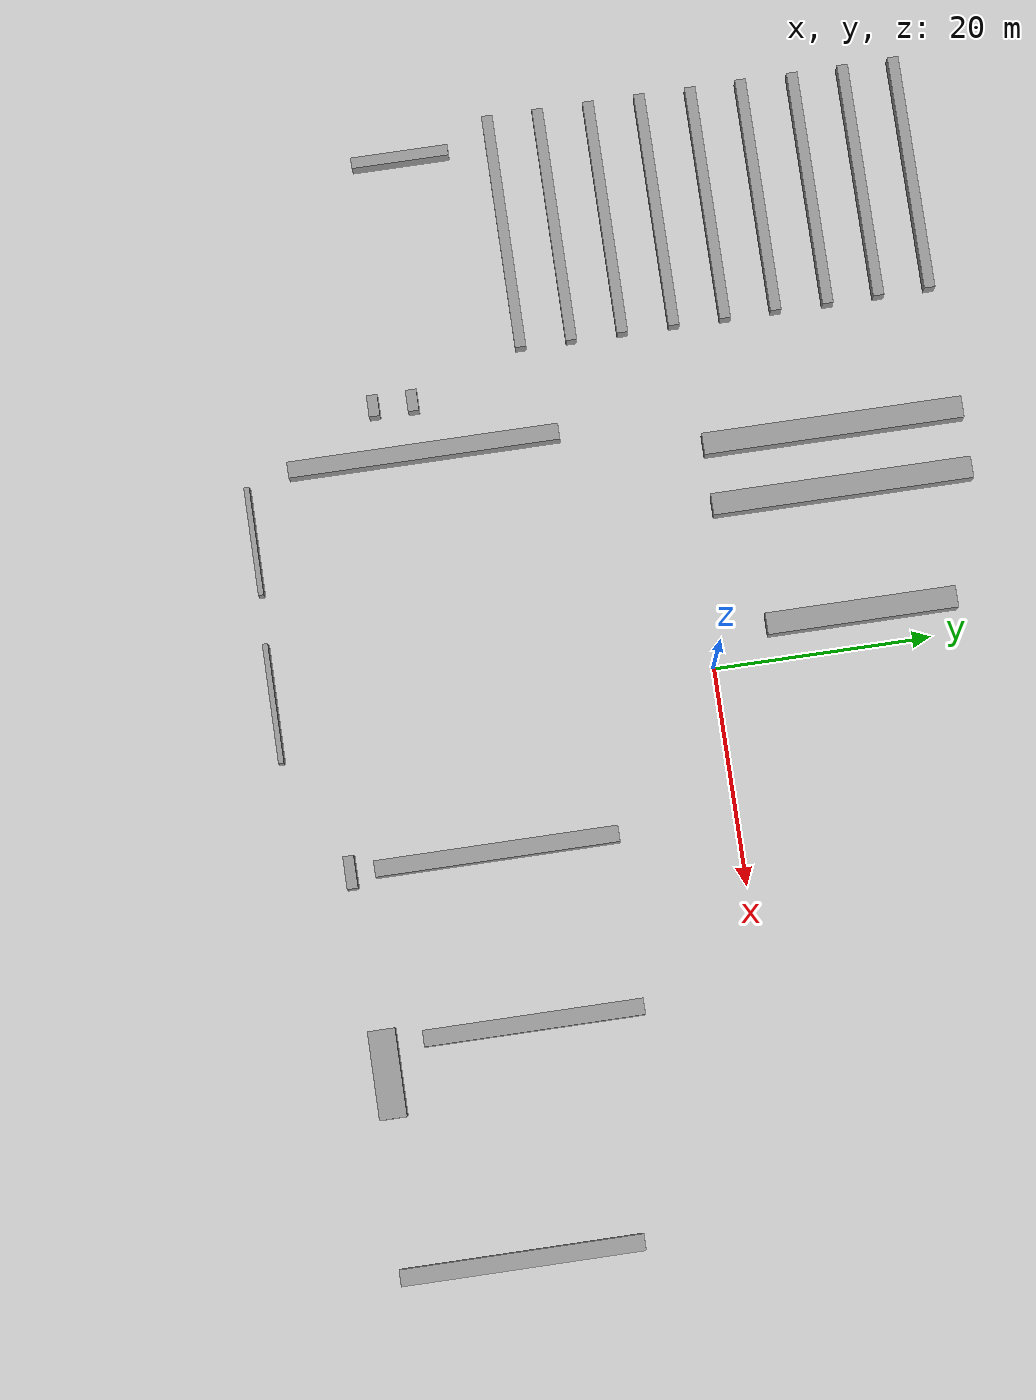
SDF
<sdf version="1.6">
 <world name="default">
  <model name="ground_plane">
   <static>1</static>
   <link name="link">
    <collision name="collision">
     <geometry><plane><normal>0 0 1</normal><size>120 120</size></plane></geometry>
     <surface>
      <contact><collide_bitmask>65535</collide_bitmask></contact>
      <friction><ode><mu>100</mu><mu2>50</mu2></ode></friction>
     </surface>
    </collision>
    <visual name="visual">
     <cast_shadows>0</cast_shadows>
     <geometry><plane><normal>0 0 1</normal><size>120 120</size></plane></geometry>
     <material>
      <script><uri>file://media/materials/scripts/gazebo.material</uri><name>Gazebo/Grey</name></script>
     </material>
    </visual>
   </link>
  </model>
  <model name="box3">
   <link name="link">
    <inertial>
     <mass>50</mass>
     <inertia><ixx>8.33333</ixx><ixy>0</ixy><ixz>0</ixz><iyy>8.33333</iyy><iyz>0</iyz><izz>8.33333</izz></inertia>
    </inertial>
    <pose>1.77498 -5.65946 0.5 0 -0 0</pose>
    <gravity>0</gravity>
    <visual name="visual">
     <geometry><box><size>10 0.5 2</size></box></geometry>
     <material>
      <script><name>Gazebo/Grey</name><uri>file://media/materials/scripts/gazebo.material</uri></script>
      <shader type="pixel"><normal_map>__default__</normal_map></shader>
      <ambient>0.3 0.3 0.3 1</ambient>
      <diffuse>0.7 0.7 0.7 1</diffuse>
      <specular>0.01 0.01 0.01 1</specular>
      <emissive>0 0 0 1</emissive>
     </material>
    </visual>
    <collision name="collision">
     <geometry><box><size>10 0.5 2</size></box></geometry>
     <surface>
      <friction>
       <ode><mu>1</mu><mu2>1</mu2><fdir1>0 0 0</fdir1><slip1>0</slip1><slip2>0</slip2></ode>
       <torsional>
        <coefficient>1</coefficient>
        <patch_radius>0</patch_radius>
        <surface_radius>0</surface_radius>
        <use_patch_radius>1</use_patch_radius>
        <ode><slip>0</slip></ode>
       </torsional>
      </friction>
      <bounce><restitution_coefficient>0</restitution_coefficient><threshold>1e+06</threshold></bounce>
      <contact>
       <collide_without_contact>0</collide_without_contact>
       <collide_without_contact_bitmask>1</collide_without_contact_bitmask>
       <collide_bitmask>1</collide_bitmask>
       <ode>
        <soft_cfm>0</soft_cfm>
        <soft_erp>0.2</soft_erp>
        <kp>1e+13</kp>
        <kd>1</kd>
        <max_vel>0.01</max_vel>
        <min_depth>0</min_depth>
       </ode>
       <bullet>
        <split_impulse>1</split_impulse>
        <split_impulse_penetration_threshold>-0.01</split_impulse_penetration_threshold>
        <soft_cfm>0</soft_cfm>
        <soft_erp>0.2</soft_erp>
        <kp>1e+13</kp>
        <kd>1</kd>
       </bullet>
      </contact>
     </surface>
    </collision>
   </link>
   <static>0</static>
   <pose>-19.1805 -34.1738 0.5 0 -0 0</pose>
  </model>
  <model name="box1">
   <link name="link">
    <inertial>
     <mass>50</mass>
     <inertia><ixx>354.167</ixx><ixy>0</ixy><ixz>0</ixz><iyy>20.8333</iyy><iyz>0</iyz><izz>341.667</izz></inertia>
    </inertial>
    <pose>-6.07242 -0.338776 0.500003 0 -0 0</pose>
    <visual name="visual">
     <geometry><box><size>1 9 2</size></box></geometry>
     <material>
      <script><name>Gazebo/Grey</name><uri>file://media/materials/scripts/gazebo.material</uri></script>
      <shader type="pixel"><normal_map>__default__</normal_map></shader>
      <ambient>0.3 0.3 0.3 1</ambient>
      <diffuse>0.7 0.7 0.7 1</diffuse>
      <specular>0.01 0.01 0.01 1</specular>
      <emissive>0 0 0 1</emissive>
     </material>
    </visual>
    <collision name="collision">
     <geometry><box><size>1 9 2</size></box></geometry>
     <surface>
      <friction>
       <ode><mu>1</mu><mu2>1</mu2><fdir1>0 0 0</fdir1><slip1>0</slip1><slip2>0</slip2></ode>
       <torsional>
        <coefficient>1</coefficient>
        <patch_radius>0</patch_radius>
        <surface_radius>0</surface_radius>
        <use_patch_radius>1</use_patch_radius>
        <ode><slip>0</slip></ode>
       </torsional>
      </friction>
      <bounce><restitution_coefficient>0</restitution_coefficient><threshold>1e+06</threshold></bounce>
      <contact>
       <collide_without_contact>0</collide_without_contact>
       <collide_without_contact_bitmask>1</collide_without_contact_bitmask>
       <collide_bitmask>1</collide_bitmask>
       <ode>
        <soft_cfm>0</soft_cfm>
        <soft_erp>0.2</soft_erp>
        <kp>1e+13</kp>
        <kd>1</kd>
        <max_vel>0.01</max_vel>
        <min_depth>0</min_depth>
       </ode>
       <bullet>
        <split_impulse>1</split_impulse>
        <split_impulse_penetration_threshold>-0.01</split_impulse_penetration_threshold>
        <soft_cfm>0</soft_cfm>
        <soft_erp>0.2</soft_erp>
        <kp>1e+13</kp>
        <kd>1</kd>
       </bullet>
      </contact>
     </surface>
    </collision>
   </link>
   <static>0</static>
   <pose>-44.9927 -21.3942 0.50001 0 -2e-06 0</pose>
  </model>
  <model name="box2">
   <link name="link">
    <inertial>
     <mass>50</mass>
     <inertia><ixx>8.33333</ixx><ixy>0</ixy><ixz>0</ixz><iyy>8.33333</iyy><iyz>0</iyz><izz>8.33333</izz></inertia>
    </inertial>
    <pose>5.5216 -2.84495 0.5 0 -0 0</pose>
    <gravity>0</gravity>
    <visual name="visual">
     <geometry><box><size>2 1 2</size></box></geometry>
     <material>
      <script><name>Gazebo/Grey</name><uri>file://media/materials/scripts/gazebo.material</uri></script>
      <shader type="pixel"><normal_map>__default__</normal_map></shader>
      <ambient>0.3 0.3 0.3 1</ambient>
      <diffuse>0.7 0.7 0.7 1</diffuse>
      <specular>0.01 0.01 0.01 1</specular>
      <emissive>0 0 0 1</emissive>
     </material>
    </visual>
    <collision name="collision">
     <geometry><box><size>2 1 2</size></box></geometry>
     <surface>
      <friction>
       <ode><mu>1</mu><mu2>1</mu2><fdir1>0 0 0</fdir1><slip1>0</slip1><slip2>0</slip2></ode>
       <torsional>
        <coefficient>1</coefficient>
        <patch_radius>0</patch_radius>
        <surface_radius>0</surface_radius>
        <use_patch_radius>1</use_patch_radius>
        <ode><slip>0</slip></ode>
       </torsional>
      </friction>
      <bounce><restitution_coefficient>0</restitution_coefficient><threshold>1e+06</threshold></bounce>
      <contact>
       <collide_without_contact>0</collide_without_contact>
       <collide_without_contact_bitmask>1</collide_without_contact_bitmask>
       <collide_bitmask>1</collide_bitmask>
       <ode>
        <soft_cfm>0</soft_cfm>
        <soft_erp>0.2</soft_erp>
        <kp>1e+13</kp>
        <kd>1</kd>
        <max_vel>0.01</max_vel>
        <min_depth>0</min_depth>
       </ode>
       <bullet>
        <split_impulse>1</split_impulse>
        <split_impulse_penetration_threshold>-0.01</split_impulse_penetration_threshold>
        <soft_cfm>0</soft_cfm>
        <soft_erp>0.2</soft_erp>
        <kp>1e+13</kp>
        <kd>1</kd>
       </bullet>
      </contact>
     </surface>
    </collision>
   </link>
   <static>0</static>
   <pose>-33.7601 -20.9089 0.5 0 -0 0</pose>
  </model>
  <model name="box4">
   <link name="link">
    <inertial>
     <mass>50</mass>
     <inertia><ixx>8.33333</ixx><ixy>0</ixy><ixz>0</ixz><iyy>8.33333</iyy><iyz>0</iyz><izz>8.33333</izz></inertia>
    </inertial>
    <pose>6.15428 -2.5748 0.5 0 -0 0</pose>
    <gravity>0</gravity>
    <visual name="visual">
     <geometry><box><size>2 1 2</size></box></geometry>
     <material>
      <script><name>Gazebo/Grey</name><uri>file://media/materials/scripts/gazebo.material</uri></script>
      <shader type="pixel"><normal_map>__default__</normal_map></shader>
      <ambient>0.3 0.3 0.3 1</ambient>
      <diffuse>0.7 0.7 0.7 1</diffuse>
      <specular>0.01 0.01 0.01 1</specular>
      <emissive>0 0 0 1</emissive>
     </material>
    </visual>
    <collision name="collision">
     <geometry><box><size>2 1 2</size></box></geometry>
     <surface>
      <friction>
       <ode><mu>1</mu><mu2>1</mu2><fdir1>0 0 0</fdir1><slip1>0</slip1><slip2>0</slip2></ode>
       <torsional>
        <coefficient>1</coefficient>
        <patch_radius>0</patch_radius>
        <surface_radius>0</surface_radius>
        <use_patch_radius>1</use_patch_radius>
        <ode><slip>0</slip></ode>
       </torsional>
      </friction>
      <bounce><restitution_coefficient>0</restitution_coefficient><threshold>1e+06</threshold></bounce>
      <contact>
       <collide_without_contact>0</collide_without_contact>
       <collide_without_contact_bitmask>1</collide_without_contact_bitmask>
       <collide_bitmask>1</collide_bitmask>
       <ode>
        <soft_cfm>0</soft_cfm>
        <soft_erp>0.2</soft_erp>
        <kp>1e+13</kp>
        <kd>1</kd>
        <max_vel>0.01</max_vel>
        <min_depth>0</min_depth>
       </ode>
       <bullet>
        <split_impulse>1</split_impulse>
        <split_impulse_penetration_threshold>-0.01</split_impulse_penetration_threshold>
        <soft_cfm>0</soft_cfm>
        <soft_erp>0.2</soft_erp>
        <kp>1e+13</kp>
        <kd>1</kd>
       </bullet>
      </contact>
     </surface>
    </collision>
   </link>
   <static>0</static>
   <pose>-34.4153 -24.7842 0.5 0 -0 0</pose>
  </model>
  <model name="box5">
   <link name="link">
    <inertial>
     <mass>50</mass>
     <inertia><ixx>8.33333</ixx><ixy>0</ixy><ixz>0</ixz><iyy>8.33333</iyy><iyz>0</iyz><izz>8.33333</izz></inertia>
    </inertial>
    <pose>15.6039 -3.92606 0.5 0 -0 0</pose>
    <gravity>0</gravity>
    <visual name="visual">
     <geometry><box><size>11 0.5 2</size></box></geometry>
     <material>
      <script><name>Gazebo/Grey</name><uri>file://media/materials/scripts/gazebo.material</uri></script>
      <shader type="pixel"><normal_map>__default__</normal_map></shader>
      <ambient>0.3 0.3 0.3 1</ambient>
      <diffuse>0.7 0.7 0.7 1</diffuse>
      <specular>0.01 0.01 0.01 1</specular>
      <emissive>0 0 0 1</emissive>
     </material>
    </visual>
    <collision name="collision">
     <geometry><box><size>11 0.5 2</size></box></geometry>
     <surface>
      <friction>
       <ode><mu>1</mu><mu2>1</mu2><fdir1>0 0 0</fdir1><slip1>0</slip1><slip2>0</slip2></ode>
       <torsional>
        <coefficient>1</coefficient>
        <patch_radius>0</patch_radius>
        <surface_radius>0</surface_radius>
        <use_patch_radius>1</use_patch_radius>
        <ode><slip>0</slip></ode>
       </torsional>
      </friction>
      <bounce><restitution_coefficient>0</restitution_coefficient><threshold>1e+06</threshold></bounce>
      <contact>
       <collide_without_contact>0</collide_without_contact>
       <collide_without_contact_bitmask>1</collide_without_contact_bitmask>
       <collide_bitmask>1</collide_bitmask>
       <ode>
        <soft_cfm>0</soft_cfm>
        <soft_erp>0.2</soft_erp>
        <kp>1e+13</kp>
        <kd>1</kd>
        <max_vel>0.01</max_vel>
        <min_depth>0</min_depth>
       </ode>
       <bullet>
        <split_impulse>1</split_impulse>
        <split_impulse_penetration_threshold>-0.01</split_impulse_penetration_threshold>
        <soft_cfm>0</soft_cfm>
        <soft_erp>0.2</soft_erp>
        <kp>1e+13</kp>
        <kd>1</kd>
       </bullet>
      </contact>
     </surface>
    </collision>
   </link>
   <static>0</static>
   <pose>-18.027 -36.1582 0.5 0 -0 0</pose>
  </model>
  <model name="box11">
   <link name="link">
    <inertial>
     <mass>50</mass>
     <inertia><ixx>8.33333</ixx><ixy>0</ixy><ixz>0</ixz><iyy>8.33333</iyy><iyz>0</iyz><izz>8.33333</izz></inertia>
    </inertial>
    <pose>-15.2383 0.1738 0.5 0 -0 0</pose>
    <gravity>0</gravity>
    <visual name="visual">
     <geometry><box><size>22 1 2</size></box></geometry>
     <material>
      <script><name>Gazebo/Grey</name><uri>file://media/materials/scripts/gazebo.material</uri></script>
      <shader type="pixel"><normal_map>__default__</normal_map></shader>
      <ambient>0.3 0.3 0.3 1</ambient>
      <diffuse>0.7 0.7 0.7 1</diffuse>
      <specular>0.01 0.01 0.01 1</specular>
      <emissive>0 0 0 1</emissive>
     </material>
    </visual>
    <collision name="collision">
     <geometry><box><size>22 1 2</size></box></geometry>
     <surface>
      <friction>
       <ode><mu>1</mu><mu2>1</mu2><fdir1>0 0 0</fdir1><slip1>0</slip1><slip2>0</slip2></ode>
       <torsional>
        <coefficient>1</coefficient>
        <patch_radius>0</patch_radius>
        <surface_radius>0</surface_radius>
        <use_patch_radius>1</use_patch_radius>
        <ode><slip>0</slip></ode>
       </torsional>
      </friction>
      <bounce><restitution_coefficient>0</restitution_coefficient><threshold>1e+06</threshold></bounce>
      <contact>
       <collide_without_contact>0</collide_without_contact>
       <collide_without_contact_bitmask>1</collide_without_contact_bitmask>
       <collide_bitmask>1</collide_bitmask>
       <ode>
        <soft_cfm>0</soft_cfm>
        <soft_erp>0.2</soft_erp>
        <kp>1e+13</kp>
        <kd>1</kd>
        <max_vel>0.01</max_vel>
        <min_depth>0</min_depth>
       </ode>
       <bullet>
        <split_impulse>1</split_impulse>
        <split_impulse_penetration_threshold>-0.01</split_impulse_penetration_threshold>
        <soft_cfm>0</soft_cfm>
        <soft_erp>0.2</soft_erp>
        <kp>1e+13</kp>
        <kd>1</kd>
       </bullet>
      </contact>
     </surface>
    </collision>
   </link>
   <static>0</static>
   <pose>-27.5319 24.5737 0.5 0 -0 0</pose>
  </model>
  <model name="box12">
   <link name="link">
    <inertial>
     <mass>50</mass>
     <inertia><ixx>8.33333</ixx><ixy>0</ixy><ixz>0</ixz><iyy>8.33333</iyy><iyz>0</iyz><izz>8.33333</izz></inertia>
    </inertial>
    <pose>5.70963 -14.2059 0.5 0 -0 0</pose>
    <gravity>0</gravity>
    <visual name="visual">
     <geometry><box><size>2 24 2</size></box></geometry>
     <material>
      <script><name>Gazebo/Grey</name><uri>file://media/materials/scripts/gazebo.material</uri></script>
      <shader type="pixel"><normal_map>__default__</normal_map></shader>
      <ambient>0.3 0.3 0.3 1</ambient>
      <diffuse>0.7 0.7 0.7 1</diffuse>
      <specular>0.01 0.01 0.01 1</specular>
      <emissive>0 0 0 1</emissive>
     </material>
    </visual>
    <collision name="collision">
     <geometry><box><size>2 24 2</size></box></geometry>
     <surface>
      <friction>
       <ode><mu>1</mu><mu2>1</mu2><fdir1>0 0 0</fdir1><slip1>0</slip1><slip2>0</slip2></ode>
       <torsional>
        <coefficient>1</coefficient>
        <patch_radius>0</patch_radius>
        <surface_radius>0</surface_radius>
        <use_patch_radius>1</use_patch_radius>
        <ode><slip>0</slip></ode>
       </torsional>
      </friction>
      <bounce><restitution_coefficient>0</restitution_coefficient><threshold>1e+06</threshold></bounce>
      <contact>
       <collide_without_contact>0</collide_without_contact>
       <collide_without_contact_bitmask>1</collide_without_contact_bitmask>
       <collide_bitmask>1</collide_bitmask>
       <ode>
        <soft_cfm>0</soft_cfm>
        <soft_erp>0.2</soft_erp>
        <kp>1e+13</kp>
        <kd>1</kd>
        <max_vel>0.01</max_vel>
        <min_depth>0</min_depth>
       </ode>
       <bullet>
        <split_impulse>1</split_impulse>
        <split_impulse_penetration_threshold>-0.01</split_impulse_penetration_threshold>
        <soft_cfm>0</soft_cfm>
        <soft_erp>0.2</soft_erp>
        <kp>1e+13</kp>
        <kd>1</kd>
       </bullet>
      </contact>
     </surface>
    </collision>
   </link>
   <static>0</static>
   <pose>-26.068 28.1849 0.5 0 -0 0</pose>
  </model>
  <model name="box13">
   <link name="link">
    <inertial>
     <mass>50</mass>
     <inertia><ixx>8.33333</ixx><ixy>0</ixy><ixz>0</ixz><iyy>8.33333</iyy><iyz>0</iyz><izz>8.33333</izz></inertia>
    </inertial>
    <pose>-7.06778 -21.3021 0.5 0 -0 0</pose>
    <gravity>0</gravity>
    <visual name="visual">
     <geometry><box><size>1.5 25 2</size></box></geometry>
     <material>
      <script><name>Gazebo/Grey</name><uri>file://media/materials/scripts/gazebo.material</uri></script>
      <shader type="pixel"><normal_map>__default__</normal_map></shader>
      <ambient>0.3 0.3 0.3 1</ambient>
      <diffuse>0.7 0.7 0.7 1</diffuse>
      <specular>0.01 0.01 0.01 1</specular>
      <emissive>0 0 0 1</emissive>
     </material>
    </visual>
    <collision name="collision">
     <geometry><box><size>1.5 25 2</size></box></geometry>
     <surface>
      <friction>
       <ode><mu>1</mu><mu2>1</mu2><fdir1>0 0 0</fdir1><slip1>0</slip1><slip2>0</slip2></ode>
       <torsional>
        <coefficient>1</coefficient>
        <patch_radius>0</patch_radius>
        <surface_radius>0</surface_radius>
        <use_patch_radius>1</use_patch_radius>
        <ode><slip>0</slip></ode>
       </torsional>
      </friction>
      <bounce><restitution_coefficient>0</restitution_coefficient><threshold>1e+06</threshold></bounce>
      <contact>
       <collide_without_contact>0</collide_without_contact>
       <collide_without_contact_bitmask>1</collide_without_contact_bitmask>
       <collide_bitmask>1</collide_bitmask>
       <ode>
        <soft_cfm>0</soft_cfm>
        <soft_erp>0.2</soft_erp>
        <kp>1e+13</kp>
        <kd>1</kd>
        <max_vel>0.01</max_vel>
        <min_depth>0</min_depth>
       </ode>
       <bullet>
        <split_impulse>1</split_impulse>
        <split_impulse_penetration_threshold>-0.01</split_impulse_penetration_threshold>
        <soft_cfm>0</soft_cfm>
        <soft_erp>0.2</soft_erp>
        <kp>1e+13</kp>
        <kd>1</kd>
       </bullet>
      </contact>
     </surface>
    </collision>
   </link>
   <static>0</static>
   <pose>-16.3968 -2.086 0.5 0 -0 0</pose>
  </model>
  <model name="box14">
   <link name="link">
    <inertial>
     <mass>50</mass>
     <inertia><ixx>8.33333</ixx><ixy>0</ixy><ixz>0</ixz><iyy>8.33333</iyy><iyz>0</iyz><izz>8.33333</izz></inertia>
    </inertial>
    <pose>13.1373 19.321 0.5 0 -0 0</pose>
    <gravity>0</gravity>
    <visual name="visual">
     <geometry><box><size>2 17.5 2</size></box></geometry>
     <material>
      <script><name>Gazebo/Grey</name><uri>file://media/materials/scripts/gazebo.material</uri></script>
      <shader type="pixel"><normal_map>__default__</normal_map></shader>
      <ambient>0.3 0.3 0.3 1</ambient>
      <diffuse>0.7 0.7 0.7 1</diffuse>
      <specular>0.01 0.01 0.01 1</specular>
      <emissive>0 0 0 1</emissive>
     </material>
    </visual>
    <collision name="collision">
     <geometry><box><size>2 17.5 2</size></box></geometry>
     <surface>
      <friction>
       <ode><mu>1</mu><mu2>1</mu2><fdir1>0 0 0</fdir1><slip1>0</slip1><slip2>0</slip2></ode>
       <torsional>
        <coefficient>1</coefficient>
        <patch_radius>0</patch_radius>
        <surface_radius>0</surface_radius>
        <use_patch_radius>1</use_patch_radius>
        <ode><slip>0</slip></ode>
       </torsional>
      </friction>
      <bounce><restitution_coefficient>0</restitution_coefficient><threshold>1e+06</threshold></bounce>
      <contact>
       <collide_without_contact>0</collide_without_contact>
       <collide_without_contact_bitmask>1</collide_without_contact_bitmask>
       <collide_bitmask>1</collide_bitmask>
       <ode>
        <soft_cfm>0</soft_cfm>
        <soft_erp>0.2</soft_erp>
        <kp>1e+13</kp>
        <kd>1</kd>
        <max_vel>0.01</max_vel>
        <min_depth>0</min_depth>
       </ode>
       <bullet>
        <split_impulse>1</split_impulse>
        <split_impulse_penetration_threshold>-0.01</split_impulse_penetration_threshold>
        <soft_cfm>0</soft_cfm>
        <soft_erp>0.2</soft_erp>
        <kp>1e+13</kp>
        <kd>1</kd>
       </bullet>
      </contact>
     </surface>
    </collision>
   </link>
   <static>0</static>
   <pose>-16.2569 -5.3433 0.5 0 -0 0</pose>
  </model>
  <model name="box15">
   <link name="link">
    <inertial>
     <mass>50</mass>
     <inertia><ixx>8.33333</ixx><ixy>0</ixy><ixz>0</ixz><iyy>8.33333</iyy><iyz>0</iyz><izz>8.33333</izz></inertia>
    </inertial>
    <pose>68.5505 -20.0937 0.5 0 -0 0</pose>
    <gravity>0</gravity>
    <visual name="visual">
     <geometry><box><size>1.5 22 2</size></box></geometry>
     <material>
      <script><name>Gazebo/Grey</name><uri>file://media/materials/scripts/gazebo.material</uri></script>
      <shader type="pixel"><normal_map>__default__</normal_map></shader>
      <ambient>0.3 0.3 0.3 1</ambient>
      <diffuse>0.7 0.7 0.7 1</diffuse>
      <specular>0.01 0.01 0.01 1</specular>
      <emissive>0 0 0 1</emissive>
     </material>
    </visual>
    <collision name="collision">
     <geometry><box><size>1.5 22 2</size></box></geometry>
     <surface>
      <friction>
       <ode><mu>1</mu><mu2>1</mu2><fdir1>0 0 0</fdir1><slip1>0</slip1><slip2>0</slip2></ode>
       <torsional>
        <coefficient>1</coefficient>
        <patch_radius>0</patch_radius>
        <surface_radius>0</surface_radius>
        <use_patch_radius>1</use_patch_radius>
        <ode><slip>0</slip></ode>
       </torsional>
      </friction>
      <bounce><restitution_coefficient>0</restitution_coefficient><threshold>1e+06</threshold></bounce>
      <contact>
       <collide_without_contact>0</collide_without_contact>
       <collide_without_contact_bitmask>1</collide_without_contact_bitmask>
       <collide_bitmask>1</collide_bitmask>
       <ode>
        <soft_cfm>0</soft_cfm>
        <soft_erp>0.2</soft_erp>
        <kp>1e+13</kp>
        <kd>1</kd>
        <max_vel>0.01</max_vel>
        <min_depth>0</min_depth>
       </ode>
       <bullet>
        <split_impulse>1</split_impulse>
        <split_impulse_penetration_threshold>-0.01</split_impulse_penetration_threshold>
        <soft_cfm>0</soft_cfm>
        <soft_erp>0.2</soft_erp>
        <kp>1e+13</kp>
        <kd>1</kd>
       </bullet>
      </contact>
     </surface>
    </collision>
   </link>
   <static>0</static>
   <pose>-18.4083 -4.7196 0.5 0 -0 0</pose>
  </model>
  <model name="box16">
   <link name="link">
    <inertial>
     <mass>50</mass>
     <inertia><ixx>8.33333</ixx><ixy>0</ixy><ixz>0</ixz><iyy>8.33333</iyy><iyz>0</iyz><izz>8.33333</izz></inertia>
    </inertial>
    <pose>49.8339 -13.9708 0.5 0 -0 0</pose>
    <gravity>0</gravity>
    <visual name="visual">
     <geometry><box><size>1.5 20 2</size></box></geometry>
     <material>
      <script><name>Gazebo/Grey</name><uri>file://media/materials/scripts/gazebo.material</uri></script>
      <shader type="pixel"><normal_map>__default__</normal_map></shader>
      <ambient>0.3 0.3 0.3 1</ambient>
      <diffuse>0.7 0.7 0.7 1</diffuse>
      <specular>0.01 0.01 0.01 1</specular>
      <emissive>0 0 0 1</emissive>
     </material>
    </visual>
    <collision name="collision">
     <geometry><box><size>1.5 20 2</size></box></geometry>
     <surface>
      <friction>
       <ode><mu>1</mu><mu2>1</mu2><fdir1>0 0 0</fdir1><slip1>0</slip1><slip2>0</slip2></ode>
       <torsional>
        <coefficient>1</coefficient>
        <patch_radius>0</patch_radius>
        <surface_radius>0</surface_radius>
        <use_patch_radius>1</use_patch_radius>
        <ode><slip>0</slip></ode>
       </torsional>
      </friction>
      <bounce><restitution_coefficient>0</restitution_coefficient><threshold>1e+06</threshold></bounce>
      <contact>
       <collide_without_contact>0</collide_without_contact>
       <collide_without_contact_bitmask>1</collide_without_contact_bitmask>
       <collide_bitmask>1</collide_bitmask>
       <ode>
        <soft_cfm>0</soft_cfm>
        <soft_erp>0.2</soft_erp>
        <kp>1e+13</kp>
        <kd>1</kd>
        <max_vel>0.01</max_vel>
        <min_depth>0</min_depth>
       </ode>
       <bullet>
        <split_impulse>1</split_impulse>
        <split_impulse_penetration_threshold>-0.01</split_impulse_penetration_threshold>
        <soft_cfm>0</soft_cfm>
        <soft_erp>0.2</soft_erp>
        <kp>1e+13</kp>
        <kd>1</kd>
       </bullet>
      </contact>
     </surface>
    </collision>
   </link>
   <static>0</static>
   <pose>-20.3698 -6.8519 0.5 0 -0 0</pose>
  </model>
  <model name="box17">
   <link name="link">
    <inertial>
     <mass>50</mass>
     <inertia><ixx>8.33333</ixx><ixy>0</ixy><ixz>0</ixz><iyy>8.33333</iyy><iyz>0</iyz><izz>8.33333</izz></inertia>
    </inertial>
    <pose>32.5982 -30.9375 0.5 0 -0 0</pose>
    <gravity>0</gravity>
    <visual name="visual">
     <geometry><box><size>3 1 2</size></box></geometry>
     <material>
      <script><name>Gazebo/Grey</name><uri>file://media/materials/scripts/gazebo.material</uri></script>
      <shader type="pixel"><normal_map>__default__</normal_map></shader>
      <ambient>0.3 0.3 0.3 1</ambient>
      <diffuse>0.7 0.7 0.7 1</diffuse>
      <specular>0.01 0.01 0.01 1</specular>
      <emissive>0 0 0 1</emissive>
     </material>
    </visual>
    <collision name="collision">
     <geometry><box><size>3 1 2</size></box></geometry>
     <surface>
      <friction>
       <ode><mu>1</mu><mu2>1</mu2><fdir1>0 0 0</fdir1><slip1>0</slip1><slip2>0</slip2></ode>
       <torsional>
        <coefficient>1</coefficient>
        <patch_radius>0</patch_radius>
        <surface_radius>0</surface_radius>
        <use_patch_radius>1</use_patch_radius>
        <ode><slip>0</slip></ode>
       </torsional>
      </friction>
      <bounce><restitution_coefficient>0</restitution_coefficient><threshold>1e+06</threshold></bounce>
      <contact>
       <collide_without_contact>0</collide_without_contact>
       <collide_without_contact_bitmask>1</collide_without_contact_bitmask>
       <collide_bitmask>1</collide_bitmask>
       <ode>
        <soft_cfm>0</soft_cfm>
        <soft_erp>0.2</soft_erp>
        <kp>1e+13</kp>
        <kd>1</kd>
        <max_vel>0.01</max_vel>
        <min_depth>0</min_depth>
       </ode>
       <bullet>
        <split_impulse>1</split_impulse>
        <split_impulse_penetration_threshold>-0.01</split_impulse_penetration_threshold>
        <soft_cfm>0</soft_cfm>
        <soft_erp>0.2</soft_erp>
        <kp>1e+13</kp>
        <kd>1</kd>
       </bullet>
      </contact>
     </surface>
    </collision>
   </link>
   <static>0</static>
   <pose>-18.8398 -4.3153 0.5 0 -0 0</pose>
  </model>
  <model name="box18">
   <link name="link">
    <inertial>
     <mass>50</mass>
     <inertia><ixx>8.33333</ixx><ixy>0</ixy><ixz>0</ixz><iyy>8.33333</iyy><iyz>0</iyz><izz>8.33333</izz></inertia>
    </inertial>
    <pose>51.6629 -21.5308 0.5 0 -0 0</pose>
    <gravity>0</gravity>
    <visual name="visual">
     <geometry><box><size>8 2.5 2</size></box></geometry>
     <material>
      <script><name>Gazebo/Grey</name><uri>file://media/materials/scripts/gazebo.material</uri></script>
      <shader type="pixel"><normal_map>__default__</normal_map></shader>
      <ambient>0.3 0.3 0.3 1</ambient>
      <diffuse>0.7 0.7 0.7 1</diffuse>
      <specular>0.01 0.01 0.01 1</specular>
      <emissive>0 0 0 1</emissive>
     </material>
    </visual>
    <collision name="collision">
     <geometry><box><size>8 2.5 2</size></box></geometry>
     <surface>
      <friction>
       <ode><mu>1</mu><mu2>1</mu2><fdir1>0 0 0</fdir1><slip1>0</slip1><slip2>0</slip2></ode>
       <torsional>
        <coefficient>1</coefficient>
        <patch_radius>0</patch_radius>
        <surface_radius>0</surface_radius>
        <use_patch_radius>1</use_patch_radius>
        <ode><slip>0</slip></ode>
       </torsional>
      </friction>
      <bounce><restitution_coefficient>0</restitution_coefficient><threshold>1e+06</threshold></bounce>
      <contact>
       <collide_without_contact>0</collide_without_contact>
       <collide_without_contact_bitmask>1</collide_without_contact_bitmask>
       <collide_bitmask>1</collide_bitmask>
       <ode>
        <soft_cfm>0</soft_cfm>
        <soft_erp>0.2</soft_erp>
        <kp>1e+13</kp>
        <kd>1</kd>
        <max_vel>0.01</max_vel>
        <min_depth>0</min_depth>
       </ode>
       <bullet>
        <split_impulse>1</split_impulse>
        <split_impulse_penetration_threshold>-0.01</split_impulse_penetration_threshold>
        <soft_cfm>0</soft_cfm>
        <soft_erp>0.2</soft_erp>
        <kp>1e+13</kp>
        <kd>1</kd>
       </bullet>
      </contact>
     </surface>
    </collision>
   </link>
   <static>0</static>
   <pose>-19.5466 -12.9305 0.5 0 -0 0</pose>
  </model>
  <model name="box19">
   <link name="link">
    <inertial>
     <mass>50</mass>
     <inertia><ixx>8.33333</ixx><ixy>0</ixy><ixz>0</ixz><iyy>8.33333</iyy><iyz>0</iyz><izz>8.33333</izz></inertia>
    </inertial>
    <pose>33.4103 -9.31995 0.5 0 -0 0</pose>
    <gravity>0</gravity>
    <visual name="visual">
     <geometry><box><size>1.5 22.25 2</size></box></geometry>
     <material>
      <script><name>Gazebo/Grey</name><uri>file://media/materials/scripts/gazebo.material</uri></script>
      <shader type="pixel"><normal_map>__default__</normal_map></shader>
      <ambient>0.3 0.3 0.3 1</ambient>
      <diffuse>0.7 0.7 0.7 1</diffuse>
      <specular>0.01 0.01 0.01 1</specular>
      <emissive>0 0 0 1</emissive>
     </material>
    </visual>
    <collision name="collision">
     <geometry><box><size>1.5 22.25 2</size></box></geometry>
     <surface>
      <friction>
       <ode><mu>1</mu><mu2>1</mu2><fdir1>0 0 0</fdir1><slip1>0</slip1><slip2>0</slip2></ode>
       <torsional>
        <coefficient>1</coefficient>
        <patch_radius>0</patch_radius>
        <surface_radius>0</surface_radius>
        <use_patch_radius>1</use_patch_radius>
        <ode><slip>0</slip></ode>
       </torsional>
      </friction>
      <bounce><restitution_coefficient>0</restitution_coefficient><threshold>1e+06</threshold></bounce>
      <contact>
       <collide_without_contact>0</collide_without_contact>
       <collide_without_contact_bitmask>1</collide_without_contact_bitmask>
       <collide_bitmask>1</collide_bitmask>
       <ode>
        <soft_cfm>0</soft_cfm>
        <soft_erp>0.2</soft_erp>
        <kp>1e+13</kp>
        <kd>1</kd>
        <max_vel>0.01</max_vel>
        <min_depth>0</min_depth>
       </ode>
       <bullet>
        <split_impulse>1</split_impulse>
        <split_impulse_penetration_threshold>-0.01</split_impulse_penetration_threshold>
        <soft_cfm>0</soft_cfm>
        <soft_erp>0.2</soft_erp>
        <kp>1e+13</kp>
        <kd>1</kd>
       </bullet>
      </contact>
     </surface>
    </collision>
   </link>
   <static>0</static>
   <pose>-19.6405 -12.6144 0.5 0 -0 0</pose>
  </model>
  <model name="box27">
   <link name="link">
    <inertial>
     <mass>50</mass>
     <inertia><ixx>8.33333</ixx><ixy>0</ixy><ixz>0</ixz><iyy>8.33333</iyy><iyz>0</iyz><izz>8.33333</izz></inertia>
    </inertial>
    <pose>-15.2383 0.1738 0.5 0 -0 0</pose>
    <gravity>0</gravity>
    <visual name="visual">
     <geometry><box><size>22 1 2</size></box></geometry>
     <material>
      <script><name>Gazebo/Grey</name><uri>file://media/materials/scripts/gazebo.material</uri></script>
      <shader type="pixel"><normal_map>__default__</normal_map></shader>
      <ambient>0.3 0.3 0.3 1</ambient>
      <diffuse>0.7 0.7 0.7 1</diffuse>
      <specular>0.01 0.01 0.01 1</specular>
      <emissive>0 0 0 1</emissive>
     </material>
    </visual>
    <collision name="collision">
     <geometry><box><size>22 1 2</size></box></geometry>
     <surface>
      <friction>
       <ode><mu>1</mu><mu2>1</mu2><fdir1>0 0 0</fdir1><slip1>0</slip1><slip2>0</slip2></ode>
       <torsional>
        <coefficient>1</coefficient>
        <patch_radius>0</patch_radius>
        <surface_radius>0</surface_radius>
        <use_patch_radius>1</use_patch_radius>
        <ode><slip>0</slip></ode>
       </torsional>
      </friction>
      <bounce><restitution_coefficient>0</restitution_coefficient><threshold>1e+06</threshold></bounce>
      <contact>
       <collide_without_contact>0</collide_without_contact>
       <collide_without_contact_bitmask>1</collide_without_contact_bitmask>
       <collide_bitmask>1</collide_bitmask>
       <ode>
        <soft_cfm>0</soft_cfm>
        <soft_erp>0.2</soft_erp>
        <kp>1e+13</kp>
        <kd>1</kd>
        <max_vel>0.01</max_vel>
        <min_depth>0</min_depth>
       </ode>
       <bullet>
        <split_impulse>1</split_impulse>
        <split_impulse_penetration_threshold>-0.01</split_impulse_penetration_threshold>
        <soft_cfm>0</soft_cfm>
        <soft_erp>0.2</soft_erp>
        <kp>1e+13</kp>
        <kd>1</kd>
       </bullet>
      </contact>
     </surface>
    </collision>
   </link>
   <static>0</static>
   <pose>-27.4853 19.8278 0.5 0 -0 0</pose>
  </model>
  <model name="box20">
   <link name="link">
    <inertial>
     <mass>50</mass>
     <inertia><ixx>8.33333</ixx><ixy>0</ixy><ixz>0</ixz><iyy>8.33333</iyy><iyz>0</iyz><izz>8.33333</izz></inertia>
    </inertial>
    <pose>-15.2383 0.1738 0.5 0 -0 0</pose>
    <gravity>0</gravity>
    <visual name="visual">
     <geometry><box><size>22 1 2</size></box></geometry>
     <material>
      <script><name>Gazebo/Grey</name><uri>file://media/materials/scripts/gazebo.material</uri></script>
      <shader type="pixel"><normal_map>__default__</normal_map></shader>
      <ambient>0.3 0.3 0.3 1</ambient>
      <diffuse>0.7 0.7 0.7 1</diffuse>
      <specular>0.01 0.01 0.01 1</specular>
      <emissive>0 0 0 1</emissive>
     </material>
    </visual>
    <collision name="collision">
     <geometry><box><size>22 1 2</size></box></geometry>
     <surface>
      <friction>
       <ode><mu>1</mu><mu2>1</mu2><fdir1>0 0 0</fdir1><slip1>0</slip1><slip2>0</slip2></ode>
       <torsional>
        <coefficient>1</coefficient>
        <patch_radius>0</patch_radius>
        <surface_radius>0</surface_radius>
        <use_patch_radius>1</use_patch_radius>
        <ode><slip>0</slip></ode>
       </torsional>
      </friction>
      <bounce><restitution_coefficient>0</restitution_coefficient><threshold>1e+06</threshold></bounce>
      <contact>
       <collide_without_contact>0</collide_without_contact>
       <collide_without_contact_bitmask>1</collide_without_contact_bitmask>
       <collide_bitmask>1</collide_bitmask>
       <ode>
        <soft_cfm>0</soft_cfm>
        <soft_erp>0.2</soft_erp>
        <kp>1e+13</kp>
        <kd>1</kd>
        <max_vel>0.01</max_vel>
        <min_depth>0</min_depth>
       </ode>
       <bullet>
        <split_impulse>1</split_impulse>
        <split_impulse_penetration_threshold>-0.01</split_impulse_penetration_threshold>
        <soft_cfm>0</soft_cfm>
        <soft_erp>0.2</soft_erp>
        <kp>1e+13</kp>
        <kd>1</kd>
       </bullet>
      </contact>
     </surface>
    </collision>
   </link>
   <static>0</static>
   <pose>-27.4332 15.1019 0.5 0 -0 0</pose>
  </model>
  <model name="box21">
   <link name="link">
    <inertial>
     <mass>50</mass>
     <inertia><ixx>8.33333</ixx><ixy>0</ixy><ixz>0</ixz><iyy>8.33333</iyy><iyz>0</iyz><izz>8.33333</izz></inertia>
    </inertial>
    <pose>-15.2383 0.1738 0.5 0 -0 0</pose>
    <gravity>0</gravity>
    <visual name="visual">
     <geometry><box><size>22 1 2</size></box></geometry>
     <material>
      <script><name>Gazebo/Grey</name><uri>file://media/materials/scripts/gazebo.material</uri></script>
      <shader type="pixel"><normal_map>__default__</normal_map></shader>
      <ambient>0.3 0.3 0.3 1</ambient>
      <diffuse>0.7 0.7 0.7 1</diffuse>
      <specular>0.01 0.01 0.01 1</specular>
      <emissive>0 0 0 1</emissive>
     </material>
    </visual>
    <collision name="collision">
     <geometry><box><size>22 1 2</size></box></geometry>
     <surface>
      <friction>
       <ode><mu>1</mu><mu2>1</mu2><fdir1>0 0 0</fdir1><slip1>0</slip1><slip2>0</slip2></ode>
       <torsional>
        <coefficient>1</coefficient>
        <patch_radius>0</patch_radius>
        <surface_radius>0</surface_radius>
        <use_patch_radius>1</use_patch_radius>
        <ode><slip>0</slip></ode>
       </torsional>
      </friction>
      <bounce><restitution_coefficient>0</restitution_coefficient><threshold>1e+06</threshold></bounce>
      <contact>
       <collide_without_contact>0</collide_without_contact>
       <collide_without_contact_bitmask>1</collide_without_contact_bitmask>
       <collide_bitmask>1</collide_bitmask>
       <ode>
        <soft_cfm>0</soft_cfm>
        <soft_erp>0.2</soft_erp>
        <kp>1e+13</kp>
        <kd>1</kd>
        <max_vel>0.01</max_vel>
        <min_depth>0</min_depth>
       </ode>
       <bullet>
        <split_impulse>1</split_impulse>
        <split_impulse_penetration_threshold>-0.01</split_impulse_penetration_threshold>
        <soft_cfm>0</soft_cfm>
        <soft_erp>0.2</soft_erp>
        <kp>1e+13</kp>
        <kd>1</kd>
       </bullet>
      </contact>
     </surface>
    </collision>
   </link>
   <static>0</static>
   <pose>-27.4813 10.27 0.5 0 -0 0</pose>
  </model>
  <model name="box22">
   <link name="link">
    <inertial>
     <mass>50</mass>
     <inertia><ixx>8.33333</ixx><ixy>0</ixy><ixz>0</ixz><iyy>8.33333</iyy><iyz>0</iyz><izz>8.33333</izz></inertia>
    </inertial>
    <pose>-15.2383 0.1738 0.5 0 -0 0</pose>
    <gravity>0</gravity>
    <visual name="visual">
     <geometry><box><size>22 1 2</size></box></geometry>
     <material>
      <script><name>Gazebo/Grey</name><uri>file://media/materials/scripts/gazebo.material</uri></script>
      <shader type="pixel"><normal_map>__default__</normal_map></shader>
      <ambient>0.3 0.3 0.3 1</ambient>
      <diffuse>0.7 0.7 0.7 1</diffuse>
      <specular>0.01 0.01 0.01 1</specular>
      <emissive>0 0 0 1</emissive>
     </material>
    </visual>
    <collision name="collision">
     <geometry><box><size>22 1 2</size></box></geometry>
     <surface>
      <friction>
       <ode><mu>1</mu><mu2>1</mu2><fdir1>0 0 0</fdir1><slip1>0</slip1><slip2>0</slip2></ode>
       <torsional>
        <coefficient>1</coefficient>
        <patch_radius>0</patch_radius>
        <surface_radius>0</surface_radius>
        <use_patch_radius>1</use_patch_radius>
        <ode><slip>0</slip></ode>
       </torsional>
      </friction>
      <bounce><restitution_coefficient>0</restitution_coefficient><threshold>1e+06</threshold></bounce>
      <contact>
       <collide_without_contact>0</collide_without_contact>
       <collide_without_contact_bitmask>1</collide_without_contact_bitmask>
       <collide_bitmask>1</collide_bitmask>
       <ode>
        <soft_cfm>0</soft_cfm>
        <soft_erp>0.2</soft_erp>
        <kp>1e+13</kp>
        <kd>1</kd>
        <max_vel>0.01</max_vel>
        <min_depth>0</min_depth>
       </ode>
       <bullet>
        <split_impulse>1</split_impulse>
        <split_impulse_penetration_threshold>-0.01</split_impulse_penetration_threshold>
        <soft_cfm>0</soft_cfm>
        <soft_erp>0.2</soft_erp>
        <kp>1e+13</kp>
        <kd>1</kd>
       </bullet>
      </contact>
     </surface>
    </collision>
   </link>
   <static>0</static>
   <pose>-27.4254 5.55698 0.5 0 -0 0</pose>
  </model>
  <model name="box23">
   <link name="link">
    <inertial>
     <mass>50</mass>
     <inertia><ixx>8.33333</ixx><ixy>0</ixy><ixz>0</ixz><iyy>8.33333</iyy><iyz>0</iyz><izz>8.33333</izz></inertia>
    </inertial>
    <pose>-15.2383 0.1738 0.5 0 -0 0</pose>
    <gravity>0</gravity>
    <visual name="visual">
     <geometry><box><size>22 1 2</size></box></geometry>
     <material>
      <script><name>Gazebo/Grey</name><uri>file://media/materials/scripts/gazebo.material</uri></script>
      <shader type="pixel"><normal_map>__default__</normal_map></shader>
      <ambient>0.3 0.3 0.3 1</ambient>
      <diffuse>0.7 0.7 0.7 1</diffuse>
      <specular>0.01 0.01 0.01 1</specular>
      <emissive>0 0 0 1</emissive>
     </material>
    </visual>
    <collision name="collision">
     <geometry><box><size>22 1 2</size></box></geometry>
     <surface>
      <friction>
       <ode><mu>1</mu><mu2>1</mu2><fdir1>0 0 0</fdir1><slip1>0</slip1><slip2>0</slip2></ode>
       <torsional>
        <coefficient>1</coefficient>
        <patch_radius>0</patch_radius>
        <surface_radius>0</surface_radius>
        <use_patch_radius>1</use_patch_radius>
        <ode><slip>0</slip></ode>
       </torsional>
      </friction>
      <bounce><restitution_coefficient>0</restitution_coefficient><threshold>1e+06</threshold></bounce>
      <contact>
       <collide_without_contact>0</collide_without_contact>
       <collide_without_contact_bitmask>1</collide_without_contact_bitmask>
       <collide_bitmask>1</collide_bitmask>
       <ode>
        <soft_cfm>0</soft_cfm>
        <soft_erp>0.2</soft_erp>
        <kp>1e+13</kp>
        <kd>1</kd>
        <max_vel>0.01</max_vel>
        <min_depth>0</min_depth>
       </ode>
       <bullet>
        <split_impulse>1</split_impulse>
        <split_impulse_penetration_threshold>-0.01</split_impulse_penetration_threshold>
        <soft_cfm>0</soft_cfm>
        <soft_erp>0.2</soft_erp>
        <kp>1e+13</kp>
        <kd>1</kd>
       </bullet>
      </contact>
     </surface>
    </collision>
   </link>
   <static>0</static>
   <pose>-27.4637 0.803021 0.5 0 -0 0</pose>
  </model>
  <model name="box24">
   <link name="link">
    <inertial>
     <mass>50</mass>
     <inertia><ixx>8.33333</ixx><ixy>0</ixy><ixz>0</ixz><iyy>8.33333</iyy><iyz>0</iyz><izz>8.33333</izz></inertia>
    </inertial>
    <pose>-15.2383 0.1738 0.5 0 -0 0</pose>
    <gravity>0</gravity>
    <visual name="visual">
     <geometry><box><size>22 1 2</size></box></geometry>
     <material>
      <script><name>Gazebo/Grey</name><uri>file://media/materials/scripts/gazebo.material</uri></script>
      <shader type="pixel"><normal_map>__default__</normal_map></shader>
      <ambient>0.3 0.3 0.3 1</ambient>
      <diffuse>0.7 0.7 0.7 1</diffuse>
      <specular>0.01 0.01 0.01 1</specular>
      <emissive>0 0 0 1</emissive>
     </material>
    </visual>
    <collision name="collision">
     <geometry><box><size>22 1 2</size></box></geometry>
     <surface>
      <friction>
       <ode><mu>1</mu><mu2>1</mu2><fdir1>0 0 0</fdir1><slip1>0</slip1><slip2>0</slip2></ode>
       <torsional>
        <coefficient>1</coefficient>
        <patch_radius>0</patch_radius>
        <surface_radius>0</surface_radius>
        <use_patch_radius>1</use_patch_radius>
        <ode><slip>0</slip></ode>
       </torsional>
      </friction>
      <bounce><restitution_coefficient>0</restitution_coefficient><threshold>1e+06</threshold></bounce>
      <contact>
       <collide_without_contact>0</collide_without_contact>
       <collide_without_contact_bitmask>1</collide_without_contact_bitmask>
       <collide_bitmask>1</collide_bitmask>
       <ode>
        <soft_cfm>0</soft_cfm>
        <soft_erp>0.2</soft_erp>
        <kp>1e+13</kp>
        <kd>1</kd>
        <max_vel>0.01</max_vel>
        <min_depth>0</min_depth>
       </ode>
       <bullet>
        <split_impulse>1</split_impulse>
        <split_impulse_penetration_threshold>-0.01</split_impulse_penetration_threshold>
        <soft_cfm>0</soft_cfm>
        <soft_erp>0.2</soft_erp>
        <kp>1e+13</kp>
        <kd>1</kd>
       </bullet>
      </contact>
     </surface>
    </collision>
   </link>
   <static>0</static>
   <pose>-27.4639 -3.96834 0.5 0 -0 0</pose>
  </model>
  <model name="box25">
   <link name="link">
    <inertial>
     <mass>50</mass>
     <inertia><ixx>8.33333</ixx><ixy>0</ixy><ixz>0</ixz><iyy>8.33333</iyy><iyz>0</iyz><izz>8.33333</izz></inertia>
    </inertial>
    <pose>-15.2383 0.1738 0.5 0 -0 0</pose>
    <gravity>0</gravity>
    <visual name="visual">
     <geometry><box><size>22 1 2</size></box></geometry>
     <material>
      <script><name>Gazebo/Grey</name><uri>file://media/materials/scripts/gazebo.material</uri></script>
      <shader type="pixel"><normal_map>__default__</normal_map></shader>
      <ambient>0.3 0.3 0.3 1</ambient>
      <diffuse>0.7 0.7 0.7 1</diffuse>
      <specular>0.01 0.01 0.01 1</specular>
      <emissive>0 0 0 1</emissive>
     </material>
    </visual>
    <collision name="collision">
     <geometry><box><size>22 1 2</size></box></geometry>
     <surface>
      <friction>
       <ode><mu>1</mu><mu2>1</mu2><fdir1>0 0 0</fdir1><slip1>0</slip1><slip2>0</slip2></ode>
       <torsional>
        <coefficient>1</coefficient>
        <patch_radius>0</patch_radius>
        <surface_radius>0</surface_radius>
        <use_patch_radius>1</use_patch_radius>
        <ode><slip>0</slip></ode>
       </torsional>
      </friction>
      <bounce><restitution_coefficient>0</restitution_coefficient><threshold>1e+06</threshold></bounce>
      <contact>
       <collide_without_contact>0</collide_without_contact>
       <collide_without_contact_bitmask>1</collide_without_contact_bitmask>
       <collide_bitmask>1</collide_bitmask>
       <ode>
        <soft_cfm>0</soft_cfm>
        <soft_erp>0.2</soft_erp>
        <kp>1e+13</kp>
        <kd>1</kd>
        <max_vel>0.01</max_vel>
        <min_depth>0</min_depth>
       </ode>
       <bullet>
        <split_impulse>1</split_impulse>
        <split_impulse_penetration_threshold>-0.01</split_impulse_penetration_threshold>
        <soft_cfm>0</soft_cfm>
        <soft_erp>0.2</soft_erp>
        <kp>1e+13</kp>
        <kd>1</kd>
       </bullet>
      </contact>
     </surface>
    </collision>
   </link>
   <static>0</static>
   <pose>-27.4513 -8.70734 0.5 0 -0 0</pose>
  </model>
  <model name="box26">
   <link name="link">
    <inertial>
     <mass>50</mass>
     <inertia><ixx>8.33333</ixx><ixy>0</ixy><ixz>0</ixz><iyy>8.33333</iyy><iyz>0</iyz><izz>8.33333</izz></inertia>
    </inertial>
    <pose>-15.2383 0.1738 0.5 0 -0 0</pose>
    <gravity>0</gravity>
    <visual name="visual">
     <geometry><box><size>22 1 2</size></box></geometry>
     <material>
      <script><name>Gazebo/Grey</name><uri>file://media/materials/scripts/gazebo.material</uri></script>
      <shader type="pixel"><normal_map>__default__</normal_map></shader>
      <ambient>0.3 0.3 0.3 1</ambient>
      <diffuse>0.7 0.7 0.7 1</diffuse>
      <specular>0.01 0.01 0.01 1</specular>
      <emissive>0 0 0 1</emissive>
     </material>
    </visual>
    <collision name="collision">
     <geometry><box><size>22 1 2</size></box></geometry>
     <surface>
      <friction>
       <ode><mu>1</mu><mu2>1</mu2><fdir1>0 0 0</fdir1><slip1>0</slip1><slip2>0</slip2></ode>
       <torsional>
        <coefficient>1</coefficient>
        <patch_radius>0</patch_radius>
        <surface_radius>0</surface_radius>
        <use_patch_radius>1</use_patch_radius>
        <ode><slip>0</slip></ode>
       </torsional>
      </friction>
      <bounce><restitution_coefficient>0</restitution_coefficient><threshold>1e+06</threshold></bounce>
      <contact>
       <collide_without_contact>0</collide_without_contact>
       <collide_without_contact_bitmask>1</collide_without_contact_bitmask>
       <collide_bitmask>1</collide_bitmask>
       <ode>
        <soft_cfm>0</soft_cfm>
        <soft_erp>0.2</soft_erp>
        <kp>1e+13</kp>
        <kd>1</kd>
        <max_vel>0.01</max_vel>
        <min_depth>0</min_depth>
       </ode>
       <bullet>
        <split_impulse>1</split_impulse>
        <split_impulse_penetration_threshold>-0.01</split_impulse_penetration_threshold>
        <soft_cfm>0</soft_cfm>
        <soft_erp>0.2</soft_erp>
        <kp>1e+13</kp>
        <kd>1</kd>
       </bullet>
      </contact>
     </surface>
    </collision>
   </link>
   <static>0</static>
   <pose>-27.4759 -13.4033 0.5 0 -0 0</pose>
  </model>
  <model name="box38">
   <link name="link">
    <inertial>
     <mass>50</mass>
     <inertia><ixx>8.33333</ixx><ixy>0</ixy><ixz>0</ixz><iyy>8.33333</iyy><iyz>0</iyz><izz>8.33333</izz></inertia>
    </inertial>
    <pose>5.70963 -14.2059 0.5 0 -0 0</pose>
    <gravity>0</gravity>
    <visual name="visual">
     <geometry><box><size>2 24 2</size></box></geometry>
     <material>
      <script><name>Gazebo/Grey</name><uri>file://media/materials/scripts/gazebo.material</uri></script>
      <shader type="pixel"><normal_map>__default__</normal_map></shader>
      <ambient>0.3 0.3 0.3 1</ambient>
      <diffuse>0.7 0.7 0.7 1</diffuse>
      <specular>0.01 0.01 0.01 1</specular>
      <emissive>0 0 0 1</emissive>
     </material>
    </visual>
    <collision name="collision">
     <geometry><box><size>2 24 2</size></box></geometry>
     <surface>
      <friction>
       <ode><mu>1</mu><mu2>1</mu2><fdir1>0 0 0</fdir1><slip1>0</slip1><slip2>0</slip2></ode>
       <torsional>
        <coefficient>1</coefficient>
        <patch_radius>0</patch_radius>
        <surface_radius>0</surface_radius>
        <use_patch_radius>1</use_patch_radius>
        <ode><slip>0</slip></ode>
       </torsional>
      </friction>
      <bounce><restitution_coefficient>0</restitution_coefficient><threshold>1e+06</threshold></bounce>
      <contact>
       <collide_without_contact>0</collide_without_contact>
       <collide_without_contact_bitmask>1</collide_without_contact_bitmask>
       <collide_bitmask>1</collide_bitmask>
       <ode>
        <soft_cfm>0</soft_cfm>
        <soft_erp>0.2</soft_erp>
        <kp>1e+13</kp>
        <kd>1</kd>
        <max_vel>0.01</max_vel>
        <min_depth>0</min_depth>
       </ode>
       <bullet>
        <split_impulse>1</split_impulse>
        <split_impulse_penetration_threshold>-0.01</split_impulse_penetration_threshold>
        <soft_cfm>0</soft_cfm>
        <soft_erp>0.2</soft_erp>
        <kp>1e+13</kp>
        <kd>1</kd>
       </bullet>
      </contact>
     </surface>
    </collision>
   </link>
   <static>0</static>
   <pose>-20.4175 28.1743 0.5 0 -0 0</pose>
  </model>
 </world>
</sdf>
